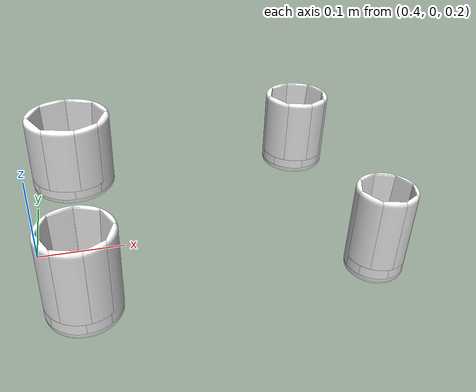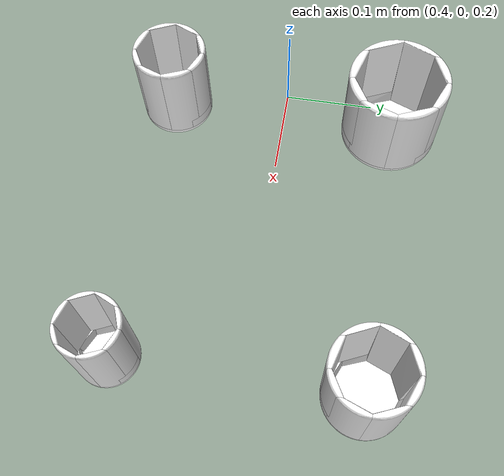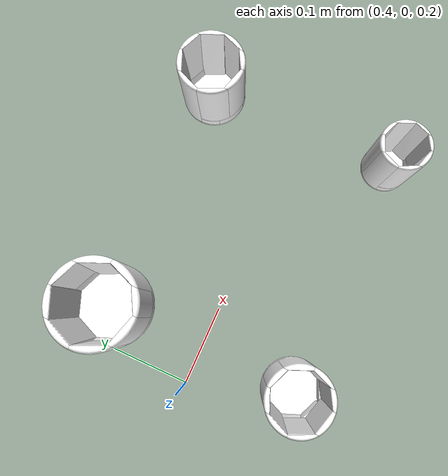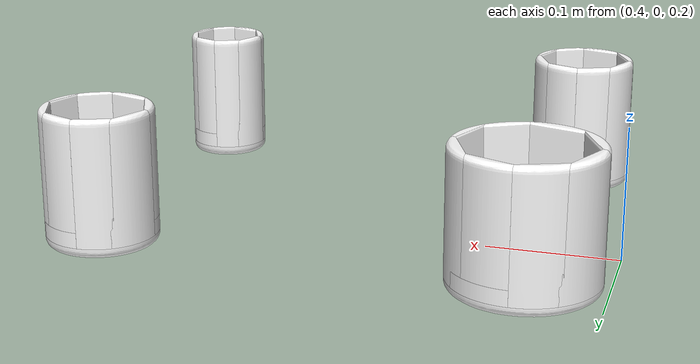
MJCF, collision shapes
<mujoco model="multi_cups">

  <default>

    <default class="visual_cup">
      <geom group="2" type="mesh" contype="0" conaffinity="0"/>
    </default>

    <default class="collision_cup">
      <geom group="3" type="mesh" rgba="1 1 1 0.0"
        contype="1"
        conaffinity="1"
        condim="4"
        friction="0.2 0.05 0.005"
        solimp="0.85 0.95 0.005 0.5 2"
        solref="0.012 3.0"/>
    </default>

  </default>

  <asset>
    <material name="cup_red"    rgba="0.85 0.20 0.20 1"/>
    <material name="cup_green"  rgba="0.20 0.75 0.30 1"/>
    <material name="cup_blue"   rgba="0.20 0.45 0.90 1"/>
    <material name="cup_yellow" rgba="0.95 0.80 0.20 1"/>
    <mesh name="cup1_visual" file="/path/to/Intervention_IL_AR/intervene_base/mujoco_scenes/assets/cup/the_mug.obj" scale="0.00075 0.00075 0.001"/>
    <mesh name="cup1_col_0" file="/path/to/Intervention_IL_AR/intervene_base/mujoco_scenes/assets/cup/the_mug_collision_0.obj" scale="0.0007725 0.0007725 0.001"/>
    <mesh name="cup1_col_1" file="/path/to/Intervention_IL_AR/intervene_base/mujoco_scenes/assets/cup/the_mug_collision_1.obj" scale="0.0007725 0.0007725 0.001"/>
    <mesh name="cup1_col_2" file="/path/to/Intervention_IL_AR/intervene_base/mujoco_scenes/assets/cup/the_mug_collision_2.obj" scale="0.0007725 0.0007725 0.001"/>
    <mesh name="cup1_col_3" file="/path/to/Intervention_IL_AR/intervene_base/mujoco_scenes/assets/cup/the_mug_collision_3.obj" scale="0.0007725 0.0007725 0.001"/>
    <mesh name="cup1_col_4" file="/path/to/Intervention_IL_AR/intervene_base/mujoco_scenes/assets/cup/the_mug_collision_4.obj" scale="0.0007725 0.0007725 0.001"/>
    <mesh name="cup1_col_5" file="/path/to/Intervention_IL_AR/intervene_base/mujoco_scenes/assets/cup/the_mug_collision_5.obj" scale="0.0007725 0.0007725 0.001"/>
    <mesh name="cup1_col_6" file="/path/to/Intervention_IL_AR/intervene_base/mujoco_scenes/assets/cup/the_mug_collision_6.obj" scale="0.0007725 0.0007725 0.001"/>
    <mesh name="cup1_col_7" file="/path/to/Intervention_IL_AR/intervene_base/mujoco_scenes/assets/cup/the_mug_collision_7.obj" scale="0.0007725 0.0007725 0.001"/>
    <mesh name="cup1_col_8" file="/path/to/Intervention_IL_AR/intervene_base/mujoco_scenes/assets/cup/the_mug_collision_8.obj" scale="0.0007725 0.0007725 0.001"/>
    <mesh name="cup1_col_9" file="/path/to/Intervention_IL_AR/intervene_base/mujoco_scenes/assets/cup/the_mug_collision_9.obj" scale="0.0007725 0.0007725 0.001"/>
    <mesh name="cup1_col_10" file="/path/to/Intervention_IL_AR/intervene_base/mujoco_scenes/assets/cup/the_mug_collision_10.obj" scale="0.0007725 0.0007725 0.001"/>
    <mesh name="cup1_col_11" file="/path/to/Intervention_IL_AR/intervene_base/mujoco_scenes/assets/cup/the_mug_collision_11.obj" scale="0.0007725 0.0007725 0.001"/>
    <mesh name="cup1_col_12" file="/path/to/Intervention_IL_AR/intervene_base/mujoco_scenes/assets/cup/the_mug_collision_12.obj" scale="0.0007725 0.0007725 0.001"/>

    <mesh name="cup2_visual" file="/path/to/Intervention_IL_AR/intervene_base/mujoco_scenes/assets/cup/the_mug.obj" scale="0.00095 0.00095 0.001"/>
    <mesh name="cup2_col_0" file="/path/to/Intervention_IL_AR/intervene_base/mujoco_scenes/assets/cup/the_mug_collision_0.obj" scale="0.0009785 0.0009785 0.001"/>
    <mesh name="cup2_col_1" file="/path/to/Intervention_IL_AR/intervene_base/mujoco_scenes/assets/cup/the_mug_collision_1.obj" scale="0.0009785 0.0009785 0.001"/>
    <mesh name="cup2_col_2" file="/path/to/Intervention_IL_AR/intervene_base/mujoco_scenes/assets/cup/the_mug_collision_2.obj" scale="0.0009785 0.0009785 0.001"/>
    <mesh name="cup2_col_3" file="/path/to/Intervention_IL_AR/intervene_base/mujoco_scenes/assets/cup/the_mug_collision_3.obj" scale="0.0009785 0.0009785 0.001"/>
    <mesh name="cup2_col_4" file="/path/to/Intervention_IL_AR/intervene_base/mujoco_scenes/assets/cup/the_mug_collision_4.obj" scale="0.0009785 0.0009785 0.001"/>
    <mesh name="cup2_col_5" file="/path/to/Intervention_IL_AR/intervene_base/mujoco_scenes/assets/cup/the_mug_collision_5.obj" scale="0.0009785 0.0009785 0.001"/>
    <mesh name="cup2_col_6" file="/path/to/Intervention_IL_AR/intervene_base/mujoco_scenes/assets/cup/the_mug_collision_6.obj" scale="0.0009785 0.0009785 0.001"/>
    <mesh name="cup2_col_7" file="/path/to/Intervention_IL_AR/intervene_base/mujoco_scenes/assets/cup/the_mug_collision_7.obj" scale="0.0009785 0.0009785 0.001"/>
    <mesh name="cup2_col_8" file="/path/to/Intervention_IL_AR/intervene_base/mujoco_scenes/assets/cup/the_mug_collision_8.obj" scale="0.0009785 0.0009785 0.001"/>
    <mesh name="cup2_col_9" file="/path/to/Intervention_IL_AR/intervene_base/mujoco_scenes/assets/cup/the_mug_collision_9.obj" scale="0.0009785 0.0009785 0.001"/>
    <mesh name="cup2_col_10" file="/path/to/Intervention_IL_AR/intervene_base/mujoco_scenes/assets/cup/the_mug_collision_10.obj" scale="0.0009785 0.0009785 0.001"/>
    <mesh name="cup2_col_11" file="/path/to/Intervention_IL_AR/intervene_base/mujoco_scenes/assets/cup/the_mug_collision_11.obj" scale="0.0009785 0.0009785 0.001"/>
    <mesh name="cup2_col_12" file="/path/to/Intervention_IL_AR/intervene_base/mujoco_scenes/assets/cup/the_mug_collision_12.obj" scale="0.0009785 0.0009785 0.001"/>

    <mesh name="cup3_visual" file="/path/to/Intervention_IL_AR/intervene_base/mujoco_scenes/assets/cup/the_mug.obj" scale="0.001 0.001 0.001"/>
    <mesh name="cup3_col_0" file="/path/to/Intervention_IL_AR/intervene_base/mujoco_scenes/assets/cup/the_mug_collision_0.obj" scale="0.00103 0.00103 0.001"/>
    <mesh name="cup3_col_1" file="/path/to/Intervention_IL_AR/intervene_base/mujoco_scenes/assets/cup/the_mug_collision_1.obj" scale="0.00103 0.00103 0.001"/>
    <mesh name="cup3_col_2" file="/path/to/Intervention_IL_AR/intervene_base/mujoco_scenes/assets/cup/the_mug_collision_2.obj" scale="0.00103 0.00103 0.001"/>
    <mesh name="cup3_col_3" file="/path/to/Intervention_IL_AR/intervene_base/mujoco_scenes/assets/cup/the_mug_collision_3.obj" scale="0.00103 0.00103 0.001"/>
    <mesh name="cup3_col_4" file="/path/to/Intervention_IL_AR/intervene_base/mujoco_scenes/assets/cup/the_mug_collision_4.obj" scale="0.00103 0.00103 0.001"/>
    <mesh name="cup3_col_5" file="/path/to/Intervention_IL_AR/intervene_base/mujoco_scenes/assets/cup/the_mug_collision_5.obj" scale="0.00103 0.00103 0.001"/>
    <mesh name="cup3_col_6" file="/path/to/Intervention_IL_AR/intervene_base/mujoco_scenes/assets/cup/the_mug_collision_6.obj" scale="0.00103 0.00103 0.001"/>
    <mesh name="cup3_col_7" file="/path/to/Intervention_IL_AR/intervene_base/mujoco_scenes/assets/cup/the_mug_collision_7.obj" scale="0.00103 0.00103 0.001"/>
    <mesh name="cup3_col_8" file="/path/to/Intervention_IL_AR/intervene_base/mujoco_scenes/assets/cup/the_mug_collision_8.obj" scale="0.00103 0.00103 0.001"/>
    <mesh name="cup3_col_9" file="/path/to/Intervention_IL_AR/intervene_base/mujoco_scenes/assets/cup/the_mug_collision_9.obj" scale="0.00103 0.00103 0.001"/>
    <mesh name="cup3_col_10" file="/path/to/Intervention_IL_AR/intervene_base/mujoco_scenes/assets/cup/the_mug_collision_10.obj" scale="0.00103 0.00103 0.001"/>
    <mesh name="cup3_col_11" file="/path/to/Intervention_IL_AR/intervene_base/mujoco_scenes/assets/cup/the_mug_collision_11.obj" scale="0.00103 0.00103 0.001"/>
    <mesh name="cup3_col_12" file="/path/to/Intervention_IL_AR/intervene_base/mujoco_scenes/assets/cup/the_mug_collision_12.obj" scale="0.00103 0.00103 0.001"/>

    <mesh name="cup4_visual" file="/path/to/Intervention_IL_AR/intervene_base/mujoco_scenes/assets/cup/the_mug.obj" scale="0.0013 0.0013 0.001"/>
    <mesh name="cup4_col_0" file="/path/to/Intervention_IL_AR/intervene_base/mujoco_scenes/assets/cup/the_mug_collision_0.obj" scale="0.001339 0.001339 0.001"/>
    <mesh name="cup4_col_1" file="/path/to/Intervention_IL_AR/intervene_base/mujoco_scenes/assets/cup/the_mug_collision_1.obj" scale="0.001339 0.001339 0.001"/>
    <mesh name="cup4_col_2" file="/path/to/Intervention_IL_AR/intervene_base/mujoco_scenes/assets/cup/the_mug_collision_2.obj" scale="0.001339 0.001339 0.001"/>
    <mesh name="cup4_col_3" file="/path/to/Intervention_IL_AR/intervene_base/mujoco_scenes/assets/cup/the_mug_collision_3.obj" scale="0.001339 0.001339 0.001"/>
    <mesh name="cup4_col_4" file="/path/to/Intervention_IL_AR/intervene_base/mujoco_scenes/assets/cup/the_mug_collision_4.obj" scale="0.001339 0.001339 0.001"/>
    <mesh name="cup4_col_5" file="/path/to/Intervention_IL_AR/intervene_base/mujoco_scenes/assets/cup/the_mug_collision_5.obj" scale="0.001339 0.001339 0.001"/>
    <mesh name="cup4_col_6" file="/path/to/Intervention_IL_AR/intervene_base/mujoco_scenes/assets/cup/the_mug_collision_6.obj" scale="0.001339 0.001339 0.001"/>
    <mesh name="cup4_col_7" file="/path/to/Intervention_IL_AR/intervene_base/mujoco_scenes/assets/cup/the_mug_collision_7.obj" scale="0.001339 0.001339 0.001"/>
    <mesh name="cup4_col_8" file="/path/to/Intervention_IL_AR/intervene_base/mujoco_scenes/assets/cup/the_mug_collision_8.obj" scale="0.001339 0.001339 0.001"/>
    <mesh name="cup4_col_9" file="/path/to/Intervention_IL_AR/intervene_base/mujoco_scenes/assets/cup/the_mug_collision_9.obj" scale="0.001339 0.001339 0.001"/>
    <mesh name="cup4_col_10" file="/path/to/Intervention_IL_AR/intervene_base/mujoco_scenes/assets/cup/the_mug_collision_10.obj" scale="0.001339 0.001339 0.001"/>
    <mesh name="cup4_col_11" file="/path/to/Intervention_IL_AR/intervene_base/mujoco_scenes/assets/cup/the_mug_collision_11.obj" scale="0.001339 0.001339 0.001"/>
    <mesh name="cup4_col_12" file="/path/to/Intervention_IL_AR/intervene_base/mujoco_scenes/assets/cup/the_mug_collision_12.obj" scale="0.001339 0.001339 0.001"/>
  </asset>

  <worldbody>
    <body name="cup1" pos="0.75 -0.12 0.225">
      <joint name="cup1_free" type="free" damping="0.01"/>
      <geom mesh="cup1_visual" class="visual_cup" material="cup_red"/>
      <geom mesh="cup1_col_0" class="collision_cup"/>
      <geom mesh="cup1_col_1" class="collision_cup"/>
      <geom mesh="cup1_col_2" class="collision_cup"/>
      <geom mesh="cup1_col_3" class="collision_cup"/>
      <geom mesh="cup1_col_4" class="collision_cup"/>
      <geom mesh="cup1_col_5" class="collision_cup"/>
      <geom mesh="cup1_col_6" class="collision_cup"/>
      <geom mesh="cup1_col_7" class="collision_cup"/>
      <geom mesh="cup1_col_8" class="collision_cup"/>
      <geom mesh="cup1_col_9" class="collision_cup"/>
      <geom mesh="cup1_col_10" class="collision_cup"/>
      <geom mesh="cup1_col_11" class="collision_cup"/>
      <geom mesh="cup1_col_12" class="collision_cup"/>
    </body>
    <body name="cup2" pos="0.45 -0.12 0.225">
      <joint name="cup2_free" type="free" damping="0.01"/>
      <geom mesh="cup2_visual" class="visual_cup" material="cup_green"/>
      <geom mesh="cup2_col_0" class="collision_cup"/>
      <geom mesh="cup2_col_1" class="collision_cup"/>
      <geom mesh="cup2_col_2" class="collision_cup"/>
      <geom mesh="cup2_col_3" class="collision_cup"/>
      <geom mesh="cup2_col_4" class="collision_cup"/>
      <geom mesh="cup2_col_5" class="collision_cup"/>
      <geom mesh="cup2_col_6" class="collision_cup"/>
      <geom mesh="cup2_col_7" class="collision_cup"/>
      <geom mesh="cup2_col_8" class="collision_cup"/>
      <geom mesh="cup2_col_9" class="collision_cup"/>
      <geom mesh="cup2_col_10" class="collision_cup"/>
      <geom mesh="cup2_col_11" class="collision_cup"/>
      <geom mesh="cup2_col_12" class="collision_cup"/>
    </body>
    <body name="cup3" pos="0.75 0.12 0.225">
      <joint name="cup3_free" type="free" damping="0.01"/>
      <geom mesh="cup3_visual" class="visual_cup" material="cup_blue"/>
      <geom mesh="cup3_col_0" class="collision_cup"/>
      <geom mesh="cup3_col_1" class="collision_cup"/>
      <geom mesh="cup3_col_2" class="collision_cup"/>
      <geom mesh="cup3_col_3" class="collision_cup"/>
      <geom mesh="cup3_col_4" class="collision_cup"/>
      <geom mesh="cup3_col_5" class="collision_cup"/>
      <geom mesh="cup3_col_6" class="collision_cup"/>
      <geom mesh="cup3_col_7" class="collision_cup"/>
      <geom mesh="cup3_col_8" class="collision_cup"/>
      <geom mesh="cup3_col_9" class="collision_cup"/>
      <geom mesh="cup3_col_10" class="collision_cup"/>
      <geom mesh="cup3_col_11" class="collision_cup"/>
      <geom mesh="cup3_col_12" class="collision_cup"/>
    </body>
    <body name="cup4" pos="0.45 0.12 0.225">
      <joint name="cup4_free" type="free" damping="0.01"/>
      <geom mesh="cup4_visual" class="visual_cup" material="cup_yellow"/>
      <geom mesh="cup4_col_0" class="collision_cup"/>
      <geom mesh="cup4_col_1" class="collision_cup"/>
      <geom mesh="cup4_col_2" class="collision_cup"/>
      <geom mesh="cup4_col_3" class="collision_cup"/>
      <geom mesh="cup4_col_4" class="collision_cup"/>
      <geom mesh="cup4_col_5" class="collision_cup"/>
      <geom mesh="cup4_col_6" class="collision_cup"/>
      <geom mesh="cup4_col_7" class="collision_cup"/>
      <geom mesh="cup4_col_8" class="collision_cup"/>
      <geom mesh="cup4_col_9" class="collision_cup"/>
      <geom mesh="cup4_col_10" class="collision_cup"/>
      <geom mesh="cup4_col_11" class="collision_cup"/>
      <geom mesh="cup4_col_12" class="collision_cup"/>
    </body>
  </worldbody>
</mujoco>
